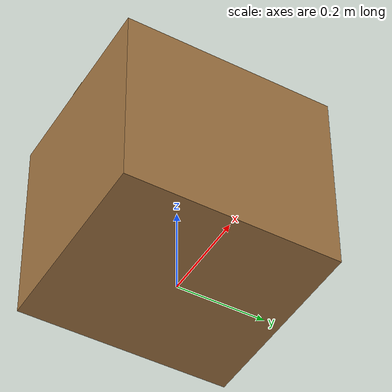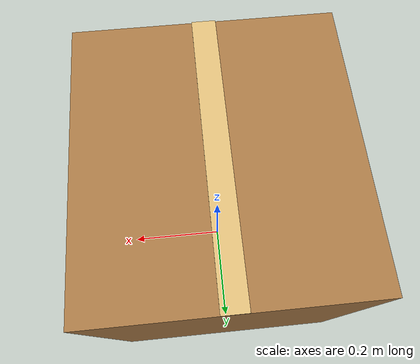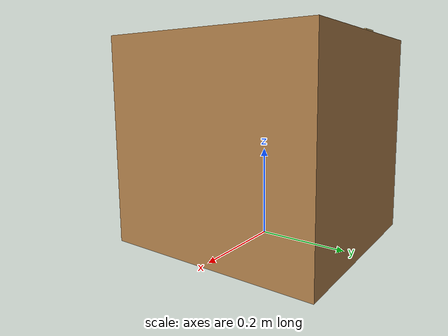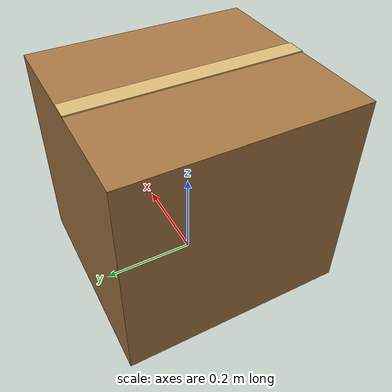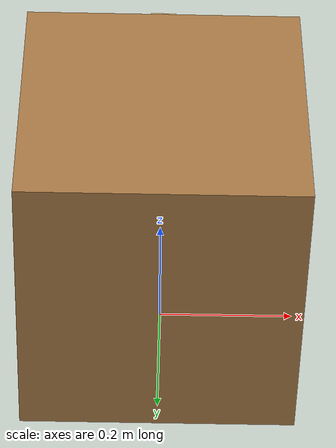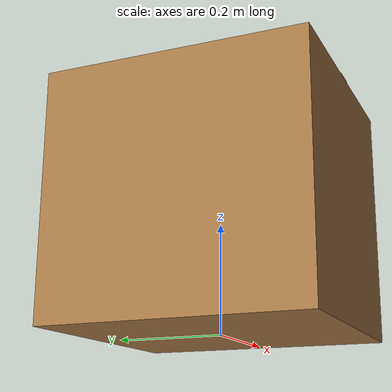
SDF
<?xml version="1.0"?>
<sdf version="1.9">
  <model name="wh_box">
    <static>true</static>
    <link name="body">
      <visual name="carton_visual">
        <pose>0 0 0.225 0 0 0</pose>
        <geometry>
          <box>
            <size>0.44 0.48 0.45</size>
          </box>
        </geometry>
        <material>
          <ambient>0.65 0.47 0.27 1</ambient>
          <diffuse>0.65 0.47 0.27 1</diffuse>
          <specular>0.06 0.06 0.06 1</specular>
        </material>
      </visual>
      <collision name="carton_collision">
        <pose>0 0 0.225 0 0 0</pose>
        <geometry>
          <box>
            <size>0.44 0.48 0.45</size>
          </box>
        </geometry>
      </collision>
      <visual name="tape_visual">
        <pose>0 0 0.45125 0 0 0</pose>
        <geometry>
          <box>
            <size>0.04 0.48 0.0025</size>
          </box>
        </geometry>
        <material>
          <ambient>0.86 0.73 0.47 1</ambient>
          <diffuse>0.86 0.73 0.47 1</diffuse>
          <specular>0.06 0.06 0.06 1</specular>
        </material>
      </visual>
    </link>
  </model>
</sdf>
